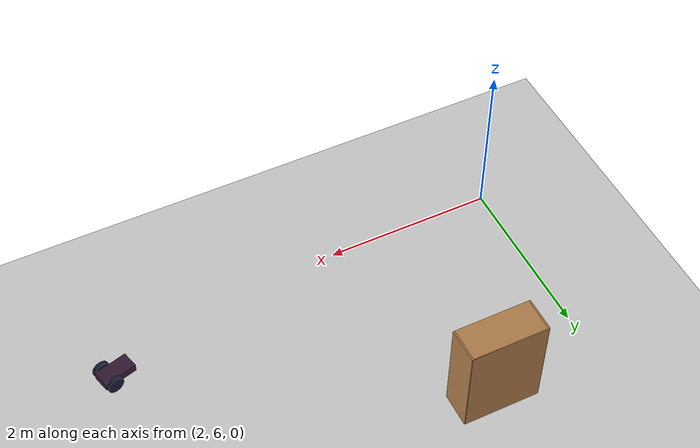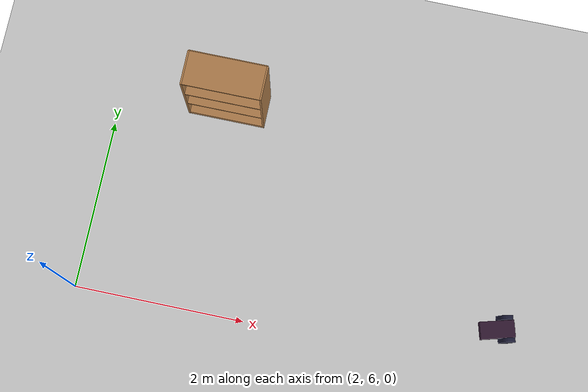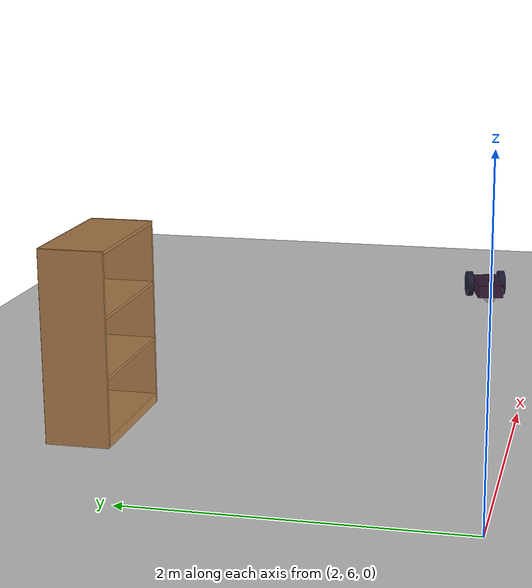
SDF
<sdf version="1.6">
 <world name="default">
  <model name="ground_plane">
   <static>1</static>
   <link name="link">
    <collision name="collision">
     <geometry><plane><normal>0 0 1</normal><size>100 100</size></plane></geometry>
     <surface><friction><ode><mu>100</mu><mu2>50</mu2></ode></friction></surface>
    </collision>
    <visual name="visual">
     <cast_shadows>0</cast_shadows>
     <geometry><plane><normal>0 0 1</normal><size>100 100</size></plane></geometry>
     <material>
      <script><uri>file://media/materials/scripts/gazebo.material</uri><name>Gazebo/Grey</name></script>
     </material>
    </visual>
   </link>
  </model>
  <model name="bookshelf">
   <static>1</static>
   <link name="link">
    <inertial><mass>1</mass></inertial>
    <collision name="back">
     <pose>0 0.005 0.6 0 -0 0</pose>
     <geometry><box><size>0.9 0.01 1.2</size></box></geometry>
    </collision>
    <visual name="visual1">
     <pose>0 0.005 0.6 0 -0 0</pose>
     <geometry><box><size>0.9 0.01 1.2</size></box></geometry>
     <material>
      <script><uri>file://media/materials/scripts/gazebo.material</uri><name>Gazebo/Wood</name></script>
     </material>
    </visual>
    <collision name="left_side">
     <pose>0.45 -0.195 0.6 0 -0 0</pose>
     <geometry><box><size>0.02 0.4 1.2</size></box></geometry>
    </collision>
    <visual name="visual2">
     <pose>0.45 -0.195 0.6 0 -0 0</pose>
     <geometry><box><size>0.02 0.4 1.2</size></box></geometry>
     <material>
      <script><uri>file://media/materials/scripts/gazebo.material</uri><name>Gazebo/Wood</name></script>
     </material>
    </visual>
    <collision name="right_side">
     <pose>-0.45 -0.195 0.6 0 -0 0</pose>
     <geometry><box><size>0.02 0.4 1.2</size></box></geometry>
    </collision>
    <visual name="visual3">
     <pose>-0.45 -0.195 0.6 0 -0 0</pose>
     <geometry><box><size>0.02 0.4 1.2</size></box></geometry>
     <material>
      <script><uri>file://media/materials/scripts/gazebo.material</uri><name>Gazebo/Wood</name></script>
     </material>
    </visual>
    <collision name="bottom">
     <pose>0 -0.195 0.03 0 -0 0</pose>
     <geometry><box><size>0.88 0.4 0.06</size></box></geometry>
    </collision>
    <visual name="visual4">
     <pose>0 -0.195 0.03 0 -0 0</pose>
     <geometry><box><size>0.88 0.4 0.06</size></box></geometry>
     <material>
      <script><uri>file://media/materials/scripts/gazebo.material</uri><name>Gazebo/Wood</name></script>
     </material>
    </visual>
    <collision name="top">
     <pose>0 -0.195 1.19 0 -0 0</pose>
     <geometry><box><size>0.88 0.4 0.02</size></box></geometry>
    </collision>
    <visual name="visual5">
     <pose>0 -0.195 1.19 0 -0 0</pose>
     <geometry><box><size>0.88 0.4 0.02</size></box></geometry>
     <material>
      <script><uri>file://media/materials/scripts/gazebo.material</uri><name>Gazebo/Wood</name></script>
     </material>
    </visual>
    <collision name="low_shelf">
     <pose>0 -0.195 0.43 0 -0 0</pose>
     <geometry><box><size>0.88 0.4 0.02</size></box></geometry>
    </collision>
    <visual name="visual6">
     <pose>0 -0.195 0.43 0 -0 0</pose>
     <geometry><box><size>0.88 0.4 0.02</size></box></geometry>
     <material>
      <script><uri>file://media/materials/scripts/gazebo.material</uri><name>Gazebo/Wood</name></script>
     </material>
    </visual>
    <collision name="high_shelf">
     <pose>0 -0.195 0.8 0 -0 0</pose>
     <geometry><box><size>0.88 0.4 0.02</size></box></geometry>
    </collision>
    <visual name="visual7">
     <pose>0 -0.195 0.8 0 -0 0</pose>
     <geometry><box><size>0.88 0.4 0.02</size></box></geometry>
     <material>
      <script><uri>file://media/materials/scripts/gazebo.material</uri><name>Gazebo/Wood</name></script>
     </material>
    </visual>
   </link>
   <pose>3.29143 8.71258 0 0 -0 0</pose>
  </model>
  <model name="myMobileRobot_0">
   <static>0</static>
   <link name="chassis">
    <pose>0 0 0.1 0 -0 0</pose>
    <collision name="collision"><geometry><box><size>0.4 0.2 0.1</size></box></geometry></collision>
    <visual name="visual">
     <geometry><box><size>0.4 0.2 0.1</size></box></geometry>
     <material>
      <ambient>0.2 0.1 0.1 1</ambient>
      <diffuse>0.2 0.1 0.2 1</diffuse>
      <specular>0 0 0 0</specular>
      <emissive>0 0 0 1</emissive>
     </material>
    </visual>
    <collision name="caster_collision">
     <pose>-0.15 0 -0.05 0 -0 0</pose>
     <geometry><sphere><radius>0.05</radius></sphere></geometry>
     <surface><friction><ode><mu>0</mu><mu2>0</mu2><slip1>1</slip1><slip2>1</slip2></ode></friction></surface>
    </collision>
    <visual name="caster_visual">
     <pose>-0.15 0 -0.05 0 -0 0</pose>
     <geometry><sphere><radius>0.05</radius></sphere></geometry>
    </visual>
    <inertial>
     <inertia><ixx>1</ixx><ixy>0</ixy><ixz>0</ixz><iyy>1</iyy><iyz>0</iyz><izz>1</izz></inertia>
     <mass>1</mass>
    </inertial>
   </link>
   <link name="left_wheel">
    <pose>0.1 0.13 0.1 -0 1.5707 1.5707</pose>
    <collision name="collision">
     <geometry><cylinder><radius>0.1</radius><length>0.05</length></cylinder></geometry>
    </collision>
    <visual name="visual">
     <geometry><cylinder><radius>0.1</radius><length>0.05</length></cylinder></geometry>
     <material>
      <ambient>0.1 0.1 0.1 1</ambient>
      <diffuse>0.1 0.1 0.2 1</diffuse>
      <specular>0 0 0 0</specular>
      <emissive>0 0 0 1</emissive>
     </material>
    </visual>
    <inertial>
     <inertia><ixx>1</ixx><ixy>0</ixy><ixz>0</ixz><iyy>1</iyy><iyz>0</iyz><izz>1</izz></inertia>
     <mass>1</mass>
    </inertial>
   </link>
   <link name="right_wheel">
    <pose>0.1 -0.13 0.1 -0 1.5707 1.5707</pose>
    <collision name="collision">
     <geometry><cylinder><radius>0.1</radius><length>0.05</length></cylinder></geometry>
    </collision>
    <visual name="visual">
     <geometry><cylinder><radius>0.1</radius><length>0.05</length></cylinder></geometry>
     <material>
      <ambient>0.1 0.1 0.1 1</ambient>
      <diffuse>0.1 0.1 0.2 1</diffuse>
      <specular>0 0 0 0</specular>
      <emissive>0 0 0 1</emissive>
     </material>
    </visual>
    <inertial>
     <inertia><ixx>1</ixx><ixy>0</ixy><ixz>0</ixz><iyy>1</iyy><iyz>0</iyz><izz>1</izz></inertia>
     <mass>1</mass>
    </inertial>
   </link>
   <joint name="left_wheel_hinge" type="revolute">
    <pose>0 0 -0.03 0 -0 0</pose>
    <child>left_wheel</child>
    <parent>chassis</parent>
    <axis>
     <xyz>0 1 0</xyz>
     <use_parent_model_frame>1</use_parent_model_frame>
     <limit><lower>-1e+16</lower><upper>1e+16</upper></limit>
     <dynamics><spring_reference>0</spring_reference><spring_stiffness>0</spring_stiffness></dynamics>
    </axis>
   </joint>
   <joint name="right_wheel_hinge" type="revolute">
    <pose>0 0 0.03 0 -0 0</pose>
    <child>right_wheel</child>
    <parent>chassis</parent>
    <axis>
     <xyz>0 1 0</xyz>
     <use_parent_model_frame>1</use_parent_model_frame>
     <limit><lower>-1e+16</lower><upper>1e+16</upper></limit>
     <dynamics><spring_reference>0</spring_reference><spring_stiffness>0</spring_stiffness></dynamics>
    </axis>
   </joint>
   <pose>6.88737 6.50372 5e-06 2.9e-05 1.9e-05 0.26762</pose>
  </model>
 </world>
</sdf>
